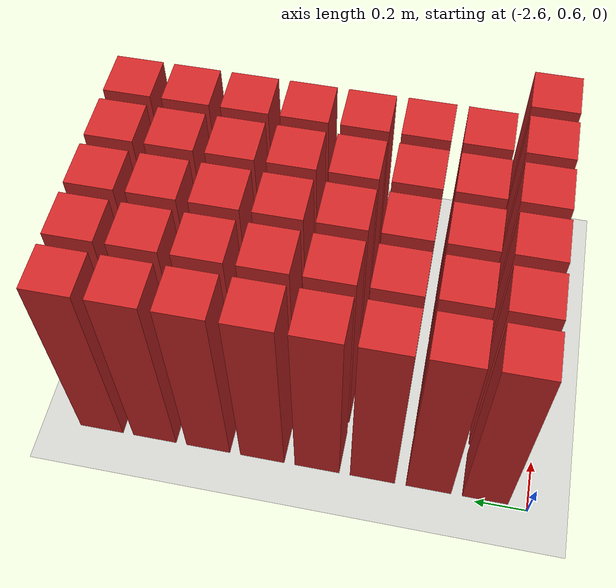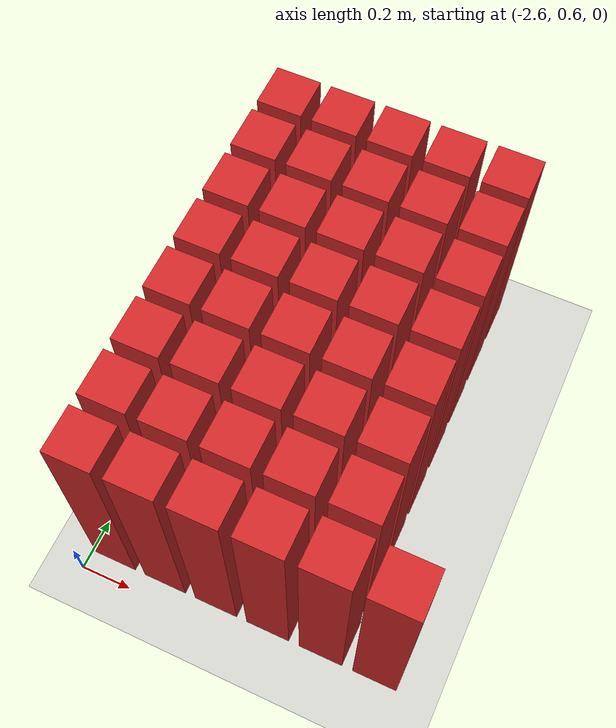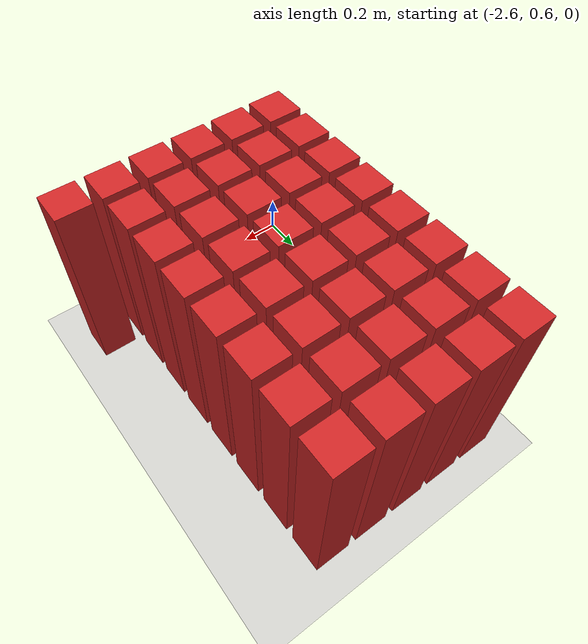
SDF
<sdf version="1.7">
 <world name="default">
  <model name="ground_plane">
   <static>1</static>
   <link name="link">
    <collision name="collision">
     <geometry><plane><normal>0 0 1</normal><size>100 100</size></plane></geometry>
     <surface>
      <contact><collide_bitmask>65535</collide_bitmask></contact>
      <friction><ode><mu>100</mu><mu2>50</mu2></ode></friction>
     </surface>
    </collision>
    <visual name="visual">
     <cast_shadows>0</cast_shadows>
     <geometry><plane><normal>0 0 1</normal><size>100 100</size></plane></geometry>
     <material>
      <script><uri>file://media/materials/scripts/gazebo.material</uri><name>Gazebo/CeilingTiled</name></script>
     </material>
    </visual>
   </link>
  </model>
  <model name="wall345">
   <link name="link">
    <pose>0 0 0.5 0 -0 0</pose>
    <inertial>
     <mass>0.5167</mass>
     <inertia>
      <ixx>0.000861167</ixx>
      <ixy>0</ixy>
      <ixz>0</ixz>
      <iyy>0.000861167</iyy>
      <iyz>0</iyz>
      <izz>0.000861167</izz>
     </inertia>
    </inertial>
    <collision name="collision">
     <geometry><box><size>0.21 0.21 1</size></box></geometry>
     <surface>
      <contact>
       <poissons_ratio>0.347</poissons_ratio>
       <elastic_modulus>8.8e+09</elastic_modulus>
       <ode><kp>100000</kp><kd>100</kd><max_vel>100</max_vel><min_depth>0.001</min_depth></ode>
      </contact>
      <friction>
       <torsional>
        <coefficient>1</coefficient>
        <use_patch_radius>0</use_patch_radius>
        <surface_radius>0.01</surface_radius>
       </torsional>
      </friction>
     </surface>
    </collision>
    <visual name="visual">
     <geometry><box><size>0.175 0.175 1</size></box></geometry>
     <material>
      <script><uri>file://media/materials/scripts/gazebo.material</uri><name>Gazebo/Red</name></script>
     </material>
    </visual>
   </link>
   <pose>-2.5 0.76087 0 0 -0 0</pose>
  </model>
  <model name="wall346">
   <link name="link">
    <pose>0 0 0.5 0 -0 0</pose>
    <inertial>
     <mass>0.5167</mass>
     <inertia>
      <ixx>0.000861167</ixx>
      <ixy>0</ixy>
      <ixz>0</ixz>
      <iyy>0.000861167</iyy>
      <iyz>0</iyz>
      <izz>0.000861167</izz>
     </inertia>
    </inertial>
    <collision name="collision">
     <geometry><box><size>0.21 0.21 1</size></box></geometry>
     <surface>
      <contact>
       <poissons_ratio>0.347</poissons_ratio>
       <elastic_modulus>8.8e+09</elastic_modulus>
       <ode><kp>100000</kp><kd>100</kd><max_vel>100</max_vel><min_depth>0.001</min_depth></ode>
      </contact>
      <friction>
       <torsional>
        <coefficient>1</coefficient>
        <use_patch_radius>0</use_patch_radius>
        <surface_radius>0.01</surface_radius>
       </torsional>
      </friction>
     </surface>
    </collision>
    <visual name="visual">
     <geometry><box><size>0.175 0.175 1</size></box></geometry>
     <material>
      <script><uri>file://media/materials/scripts/gazebo.material</uri><name>Gazebo/Red</name></script>
     </material>
    </visual>
   </link>
   <pose>-2.28261 0.76087 0 0 -0 0</pose>
  </model>
  <model name="wall347">
   <link name="link">
    <pose>0 0 0.5 0 -0 0</pose>
    <inertial>
     <mass>0.5167</mass>
     <inertia>
      <ixx>0.000861167</ixx>
      <ixy>0</ixy>
      <ixz>0</ixz>
      <iyy>0.000861167</iyy>
      <iyz>0</iyz>
      <izz>0.000861167</izz>
     </inertia>
    </inertial>
    <collision name="collision">
     <geometry><box><size>0.21 0.21 1</size></box></geometry>
     <surface>
      <contact>
       <poissons_ratio>0.347</poissons_ratio>
       <elastic_modulus>8.8e+09</elastic_modulus>
       <ode><kp>100000</kp><kd>100</kd><max_vel>100</max_vel><min_depth>0.001</min_depth></ode>
      </contact>
      <friction>
       <torsional>
        <coefficient>1</coefficient>
        <use_patch_radius>0</use_patch_radius>
        <surface_radius>0.01</surface_radius>
       </torsional>
      </friction>
     </surface>
    </collision>
    <visual name="visual">
     <geometry><box><size>0.175 0.175 1</size></box></geometry>
     <material>
      <script><uri>file://media/materials/scripts/gazebo.material</uri><name>Gazebo/Red</name></script>
     </material>
    </visual>
   </link>
   <pose>-2.06522 0.76087 0 0 -0 0</pose>
  </model>
  <model name="wall348">
   <link name="link">
    <pose>0 0 0.5 0 -0 0</pose>
    <inertial>
     <mass>0.5167</mass>
     <inertia>
      <ixx>0.000861167</ixx>
      <ixy>0</ixy>
      <ixz>0</ixz>
      <iyy>0.000861167</iyy>
      <iyz>0</iyz>
      <izz>0.000861167</izz>
     </inertia>
    </inertial>
    <collision name="collision">
     <geometry><box><size>0.21 0.21 1</size></box></geometry>
     <surface>
      <contact>
       <poissons_ratio>0.347</poissons_ratio>
       <elastic_modulus>8.8e+09</elastic_modulus>
       <ode><kp>100000</kp><kd>100</kd><max_vel>100</max_vel><min_depth>0.001</min_depth></ode>
      </contact>
      <friction>
       <torsional>
        <coefficient>1</coefficient>
        <use_patch_radius>0</use_patch_radius>
        <surface_radius>0.01</surface_radius>
       </torsional>
      </friction>
     </surface>
    </collision>
    <visual name="visual">
     <geometry><box><size>0.175 0.175 1</size></box></geometry>
     <material>
      <script><uri>file://media/materials/scripts/gazebo.material</uri><name>Gazebo/Red</name></script>
     </material>
    </visual>
   </link>
   <pose>-1.84783 0.76087 0 0 -0 0</pose>
  </model>
  <model name="wall349">
   <link name="link">
    <pose>0 0 0.5 0 -0 0</pose>
    <inertial>
     <mass>0.5167</mass>
     <inertia>
      <ixx>0.000861167</ixx>
      <ixy>0</ixy>
      <ixz>0</ixz>
      <iyy>0.000861167</iyy>
      <iyz>0</iyz>
      <izz>0.000861167</izz>
     </inertia>
    </inertial>
    <collision name="collision">
     <geometry><box><size>0.21 0.21 1</size></box></geometry>
     <surface>
      <contact>
       <poissons_ratio>0.347</poissons_ratio>
       <elastic_modulus>8.8e+09</elastic_modulus>
       <ode><kp>100000</kp><kd>100</kd><max_vel>100</max_vel><min_depth>0.001</min_depth></ode>
      </contact>
      <friction>
       <torsional>
        <coefficient>1</coefficient>
        <use_patch_radius>0</use_patch_radius>
        <surface_radius>0.01</surface_radius>
       </torsional>
      </friction>
     </surface>
    </collision>
    <visual name="visual">
     <geometry><box><size>0.175 0.175 1</size></box></geometry>
     <material>
      <script><uri>file://media/materials/scripts/gazebo.material</uri><name>Gazebo/Red</name></script>
     </material>
    </visual>
   </link>
   <pose>-1.63043 0.76087 0 0 -0 0</pose>
  </model>
  <model name="wall350">
   <link name="link">
    <pose>0 0 0.5 0 -0 0</pose>
    <inertial>
     <mass>0.5167</mass>
     <inertia>
      <ixx>0.000861167</ixx>
      <ixy>0</ixy>
      <ixz>0</ixz>
      <iyy>0.000861167</iyy>
      <iyz>0</iyz>
      <izz>0.000861167</izz>
     </inertia>
    </inertial>
    <collision name="collision">
     <geometry><box><size>0.21 0.21 1</size></box></geometry>
     <surface>
      <contact>
       <poissons_ratio>0.347</poissons_ratio>
       <elastic_modulus>8.8e+09</elastic_modulus>
       <ode><kp>100000</kp><kd>100</kd><max_vel>100</max_vel><min_depth>0.001</min_depth></ode>
      </contact>
      <friction>
       <torsional>
        <coefficient>1</coefficient>
        <use_patch_radius>0</use_patch_radius>
        <surface_radius>0.01</surface_radius>
       </torsional>
      </friction>
     </surface>
    </collision>
    <visual name="visual">
     <geometry><box><size>0.175 0.175 1</size></box></geometry>
     <material>
      <script><uri>file://media/materials/scripts/gazebo.material</uri><name>Gazebo/Red</name></script>
     </material>
    </visual>
   </link>
   <pose>-1.41304 0.76087 0 0 -0 0</pose>
  </model>
  <model name="wall368">
   <link name="link">
    <pose>0 0 0.5 0 -0 0</pose>
    <inertial>
     <mass>0.5167</mass>
     <inertia>
      <ixx>0.000861167</ixx>
      <ixy>0</ixy>
      <ixz>0</ixz>
      <iyy>0.000861167</iyy>
      <iyz>0</iyz>
      <izz>0.000861167</izz>
     </inertia>
    </inertial>
    <collision name="collision">
     <geometry><box><size>0.21 0.21 1</size></box></geometry>
     <surface>
      <contact>
       <poissons_ratio>0.347</poissons_ratio>
       <elastic_modulus>8.8e+09</elastic_modulus>
       <ode><kp>100000</kp><kd>100</kd><max_vel>100</max_vel><min_depth>0.001</min_depth></ode>
      </contact>
      <friction>
       <torsional>
        <coefficient>1</coefficient>
        <use_patch_radius>0</use_patch_radius>
        <surface_radius>0.01</surface_radius>
       </torsional>
      </friction>
     </surface>
    </collision>
    <visual name="visual">
     <geometry><box><size>0.175 0.175 1</size></box></geometry>
     <material>
      <script><uri>file://media/materials/scripts/gazebo.material</uri><name>Gazebo/Red</name></script>
     </material>
    </visual>
   </link>
   <pose>-2.5 0.978261 0 0 -0 0</pose>
  </model>
  <model name="wall369">
   <link name="link">
    <pose>0 0 0.5 0 -0 0</pose>
    <inertial>
     <mass>0.5167</mass>
     <inertia>
      <ixx>0.000861167</ixx>
      <ixy>0</ixy>
      <ixz>0</ixz>
      <iyy>0.000861167</iyy>
      <iyz>0</iyz>
      <izz>0.000861167</izz>
     </inertia>
    </inertial>
    <collision name="collision">
     <geometry><box><size>0.21 0.21 1</size></box></geometry>
     <surface>
      <contact>
       <poissons_ratio>0.347</poissons_ratio>
       <elastic_modulus>8.8e+09</elastic_modulus>
       <ode><kp>100000</kp><kd>100</kd><max_vel>100</max_vel><min_depth>0.001</min_depth></ode>
      </contact>
      <friction>
       <torsional>
        <coefficient>1</coefficient>
        <use_patch_radius>0</use_patch_radius>
        <surface_radius>0.01</surface_radius>
       </torsional>
      </friction>
     </surface>
    </collision>
    <visual name="visual">
     <geometry><box><size>0.175 0.175 1</size></box></geometry>
     <material>
      <script><uri>file://media/materials/scripts/gazebo.material</uri><name>Gazebo/Red</name></script>
     </material>
    </visual>
   </link>
   <pose>-2.28261 0.978261 0 0 -0 0</pose>
  </model>
  <model name="wall370">
   <link name="link">
    <pose>0 0 0.5 0 -0 0</pose>
    <inertial>
     <mass>0.5167</mass>
     <inertia>
      <ixx>0.000861167</ixx>
      <ixy>0</ixy>
      <ixz>0</ixz>
      <iyy>0.000861167</iyy>
      <iyz>0</iyz>
      <izz>0.000861167</izz>
     </inertia>
    </inertial>
    <collision name="collision">
     <geometry><box><size>0.21 0.21 1</size></box></geometry>
     <surface>
      <contact>
       <poissons_ratio>0.347</poissons_ratio>
       <elastic_modulus>8.8e+09</elastic_modulus>
       <ode><kp>100000</kp><kd>100</kd><max_vel>100</max_vel><min_depth>0.001</min_depth></ode>
      </contact>
      <friction>
       <torsional>
        <coefficient>1</coefficient>
        <use_patch_radius>0</use_patch_radius>
        <surface_radius>0.01</surface_radius>
       </torsional>
      </friction>
     </surface>
    </collision>
    <visual name="visual">
     <geometry><box><size>0.175 0.175 1</size></box></geometry>
     <material>
      <script><uri>file://media/materials/scripts/gazebo.material</uri><name>Gazebo/Red</name></script>
     </material>
    </visual>
   </link>
   <pose>-2.06522 0.978261 0 0 -0 0</pose>
  </model>
  <model name="wall371">
   <link name="link">
    <pose>0 0 0.5 0 -0 0</pose>
    <inertial>
     <mass>0.5167</mass>
     <inertia>
      <ixx>0.000861167</ixx>
      <ixy>0</ixy>
      <ixz>0</ixz>
      <iyy>0.000861167</iyy>
      <iyz>0</iyz>
      <izz>0.000861167</izz>
     </inertia>
    </inertial>
    <collision name="collision">
     <geometry><box><size>0.21 0.21 1</size></box></geometry>
     <surface>
      <contact>
       <poissons_ratio>0.347</poissons_ratio>
       <elastic_modulus>8.8e+09</elastic_modulus>
       <ode><kp>100000</kp><kd>100</kd><max_vel>100</max_vel><min_depth>0.001</min_depth></ode>
      </contact>
      <friction>
       <torsional>
        <coefficient>1</coefficient>
        <use_patch_radius>0</use_patch_radius>
        <surface_radius>0.01</surface_radius>
       </torsional>
      </friction>
     </surface>
    </collision>
    <visual name="visual">
     <geometry><box><size>0.175 0.175 1</size></box></geometry>
     <material>
      <script><uri>file://media/materials/scripts/gazebo.material</uri><name>Gazebo/Red</name></script>
     </material>
    </visual>
   </link>
   <pose>-1.84783 0.978261 0 0 -0 0</pose>
  </model>
  <model name="wall372">
   <link name="link">
    <pose>0 0 0.5 0 -0 0</pose>
    <inertial>
     <mass>0.5167</mass>
     <inertia>
      <ixx>0.000861167</ixx>
      <ixy>0</ixy>
      <ixz>0</ixz>
      <iyy>0.000861167</iyy>
      <iyz>0</iyz>
      <izz>0.000861167</izz>
     </inertia>
    </inertial>
    <collision name="collision">
     <geometry><box><size>0.21 0.21 1</size></box></geometry>
     <surface>
      <contact>
       <poissons_ratio>0.347</poissons_ratio>
       <elastic_modulus>8.8e+09</elastic_modulus>
       <ode><kp>100000</kp><kd>100</kd><max_vel>100</max_vel><min_depth>0.001</min_depth></ode>
      </contact>
      <friction>
       <torsional>
        <coefficient>1</coefficient>
        <use_patch_radius>0</use_patch_radius>
        <surface_radius>0.01</surface_radius>
       </torsional>
      </friction>
     </surface>
    </collision>
    <visual name="visual">
     <geometry><box><size>0.175 0.175 1</size></box></geometry>
     <material>
      <script><uri>file://media/materials/scripts/gazebo.material</uri><name>Gazebo/Red</name></script>
     </material>
    </visual>
   </link>
   <pose>-1.63043 0.978261 0 0 -0 0</pose>
  </model>
  <model name="wall391">
   <link name="link">
    <pose>0 0 0.5 0 -0 0</pose>
    <inertial>
     <mass>0.5167</mass>
     <inertia>
      <ixx>0.000861167</ixx>
      <ixy>0</ixy>
      <ixz>0</ixz>
      <iyy>0.000861167</iyy>
      <iyz>0</iyz>
      <izz>0.000861167</izz>
     </inertia>
    </inertial>
    <collision name="collision">
     <geometry><box><size>0.21 0.21 1</size></box></geometry>
     <surface>
      <contact>
       <poissons_ratio>0.347</poissons_ratio>
       <elastic_modulus>8.8e+09</elastic_modulus>
       <ode><kp>100000</kp><kd>100</kd><max_vel>100</max_vel><min_depth>0.001</min_depth></ode>
      </contact>
      <friction>
       <torsional>
        <coefficient>1</coefficient>
        <use_patch_radius>0</use_patch_radius>
        <surface_radius>0.01</surface_radius>
       </torsional>
      </friction>
     </surface>
    </collision>
    <visual name="visual">
     <geometry><box><size>0.175 0.175 1</size></box></geometry>
     <material>
      <script><uri>file://media/materials/scripts/gazebo.material</uri><name>Gazebo/Red</name></script>
     </material>
    </visual>
   </link>
   <pose>-2.5 1.19565 0 0 -0 0</pose>
  </model>
  <model name="wall392">
   <link name="link">
    <pose>0 0 0.5 0 -0 0</pose>
    <inertial>
     <mass>0.5167</mass>
     <inertia>
      <ixx>0.000861167</ixx>
      <ixy>0</ixy>
      <ixz>0</ixz>
      <iyy>0.000861167</iyy>
      <iyz>0</iyz>
      <izz>0.000861167</izz>
     </inertia>
    </inertial>
    <collision name="collision">
     <geometry><box><size>0.21 0.21 1</size></box></geometry>
     <surface>
      <contact>
       <poissons_ratio>0.347</poissons_ratio>
       <elastic_modulus>8.8e+09</elastic_modulus>
       <ode><kp>100000</kp><kd>100</kd><max_vel>100</max_vel><min_depth>0.001</min_depth></ode>
      </contact>
      <friction>
       <torsional>
        <coefficient>1</coefficient>
        <use_patch_radius>0</use_patch_radius>
        <surface_radius>0.01</surface_radius>
       </torsional>
      </friction>
     </surface>
    </collision>
    <visual name="visual">
     <geometry><box><size>0.175 0.175 1</size></box></geometry>
     <material>
      <script><uri>file://media/materials/scripts/gazebo.material</uri><name>Gazebo/Red</name></script>
     </material>
    </visual>
   </link>
   <pose>-2.28261 1.19565 0 0 -0 0</pose>
  </model>
  <model name="wall393">
   <link name="link">
    <pose>0 0 0.5 0 -0 0</pose>
    <inertial>
     <mass>0.5167</mass>
     <inertia>
      <ixx>0.000861167</ixx>
      <ixy>0</ixy>
      <ixz>0</ixz>
      <iyy>0.000861167</iyy>
      <iyz>0</iyz>
      <izz>0.000861167</izz>
     </inertia>
    </inertial>
    <collision name="collision">
     <geometry><box><size>0.21 0.21 1</size></box></geometry>
     <surface>
      <contact>
       <poissons_ratio>0.347</poissons_ratio>
       <elastic_modulus>8.8e+09</elastic_modulus>
       <ode><kp>100000</kp><kd>100</kd><max_vel>100</max_vel><min_depth>0.001</min_depth></ode>
      </contact>
      <friction>
       <torsional>
        <coefficient>1</coefficient>
        <use_patch_radius>0</use_patch_radius>
        <surface_radius>0.01</surface_radius>
       </torsional>
      </friction>
     </surface>
    </collision>
    <visual name="visual">
     <geometry><box><size>0.175 0.175 1</size></box></geometry>
     <material>
      <script><uri>file://media/materials/scripts/gazebo.material</uri><name>Gazebo/Red</name></script>
     </material>
    </visual>
   </link>
   <pose>-2.06522 1.19565 0 0 -0 0</pose>
  </model>
  <model name="wall394">
   <link name="link">
    <pose>0 0 0.5 0 -0 0</pose>
    <inertial>
     <mass>0.5167</mass>
     <inertia>
      <ixx>0.000861167</ixx>
      <ixy>0</ixy>
      <ixz>0</ixz>
      <iyy>0.000861167</iyy>
      <iyz>0</iyz>
      <izz>0.000861167</izz>
     </inertia>
    </inertial>
    <collision name="collision">
     <geometry><box><size>0.21 0.21 1</size></box></geometry>
     <surface>
      <contact>
       <poissons_ratio>0.347</poissons_ratio>
       <elastic_modulus>8.8e+09</elastic_modulus>
       <ode><kp>100000</kp><kd>100</kd><max_vel>100</max_vel><min_depth>0.001</min_depth></ode>
      </contact>
      <friction>
       <torsional>
        <coefficient>1</coefficient>
        <use_patch_radius>0</use_patch_radius>
        <surface_radius>0.01</surface_radius>
       </torsional>
      </friction>
     </surface>
    </collision>
    <visual name="visual">
     <geometry><box><size>0.175 0.175 1</size></box></geometry>
     <material>
      <script><uri>file://media/materials/scripts/gazebo.material</uri><name>Gazebo/Red</name></script>
     </material>
    </visual>
   </link>
   <pose>-1.84783 1.19565 0 0 -0 0</pose>
  </model>
  <model name="wall395">
   <link name="link">
    <pose>0 0 0.5 0 -0 0</pose>
    <inertial>
     <mass>0.5167</mass>
     <inertia>
      <ixx>0.000861167</ixx>
      <ixy>0</ixy>
      <ixz>0</ixz>
      <iyy>0.000861167</iyy>
      <iyz>0</iyz>
      <izz>0.000861167</izz>
     </inertia>
    </inertial>
    <collision name="collision">
     <geometry><box><size>0.21 0.21 1</size></box></geometry>
     <surface>
      <contact>
       <poissons_ratio>0.347</poissons_ratio>
       <elastic_modulus>8.8e+09</elastic_modulus>
       <ode><kp>100000</kp><kd>100</kd><max_vel>100</max_vel><min_depth>0.001</min_depth></ode>
      </contact>
      <friction>
       <torsional>
        <coefficient>1</coefficient>
        <use_patch_radius>0</use_patch_radius>
        <surface_radius>0.01</surface_radius>
       </torsional>
      </friction>
     </surface>
    </collision>
    <visual name="visual">
     <geometry><box><size>0.175 0.175 1</size></box></geometry>
     <material>
      <script><uri>file://media/materials/scripts/gazebo.material</uri><name>Gazebo/Red</name></script>
     </material>
    </visual>
   </link>
   <pose>-1.63043 1.19565 0 0 -0 0</pose>
  </model>
  <model name="wall414">
   <link name="link">
    <pose>0 0 0.5 0 -0 0</pose>
    <inertial>
     <mass>0.5167</mass>
     <inertia>
      <ixx>0.000861167</ixx>
      <ixy>0</ixy>
      <ixz>0</ixz>
      <iyy>0.000861167</iyy>
      <iyz>0</iyz>
      <izz>0.000861167</izz>
     </inertia>
    </inertial>
    <collision name="collision">
     <geometry><box><size>0.21 0.21 1</size></box></geometry>
     <surface>
      <contact>
       <poissons_ratio>0.347</poissons_ratio>
       <elastic_modulus>8.8e+09</elastic_modulus>
       <ode><kp>100000</kp><kd>100</kd><max_vel>100</max_vel><min_depth>0.001</min_depth></ode>
      </contact>
      <friction>
       <torsional>
        <coefficient>1</coefficient>
        <use_patch_radius>0</use_patch_radius>
        <surface_radius>0.01</surface_radius>
       </torsional>
      </friction>
     </surface>
    </collision>
    <visual name="visual">
     <geometry><box><size>0.175 0.175 1</size></box></geometry>
     <material>
      <script><uri>file://media/materials/scripts/gazebo.material</uri><name>Gazebo/Red</name></script>
     </material>
    </visual>
   </link>
   <pose>-2.5 1.41304 0 0 -0 0</pose>
  </model>
  <model name="wall415">
   <link name="link">
    <pose>0 0 0.5 0 -0 0</pose>
    <inertial>
     <mass>0.5167</mass>
     <inertia>
      <ixx>0.000861167</ixx>
      <ixy>0</ixy>
      <ixz>0</ixz>
      <iyy>0.000861167</iyy>
      <iyz>0</iyz>
      <izz>0.000861167</izz>
     </inertia>
    </inertial>
    <collision name="collision">
     <geometry><box><size>0.21 0.21 1</size></box></geometry>
     <surface>
      <contact>
       <poissons_ratio>0.347</poissons_ratio>
       <elastic_modulus>8.8e+09</elastic_modulus>
       <ode><kp>100000</kp><kd>100</kd><max_vel>100</max_vel><min_depth>0.001</min_depth></ode>
      </contact>
      <friction>
       <torsional>
        <coefficient>1</coefficient>
        <use_patch_radius>0</use_patch_radius>
        <surface_radius>0.01</surface_radius>
       </torsional>
      </friction>
     </surface>
    </collision>
    <visual name="visual">
     <geometry><box><size>0.175 0.175 1</size></box></geometry>
     <material>
      <script><uri>file://media/materials/scripts/gazebo.material</uri><name>Gazebo/Red</name></script>
     </material>
    </visual>
   </link>
   <pose>-2.28261 1.41304 0 0 -0 0</pose>
  </model>
  <model name="wall416">
   <link name="link">
    <pose>0 0 0.5 0 -0 0</pose>
    <inertial>
     <mass>0.5167</mass>
     <inertia>
      <ixx>0.000861167</ixx>
      <ixy>0</ixy>
      <ixz>0</ixz>
      <iyy>0.000861167</iyy>
      <iyz>0</iyz>
      <izz>0.000861167</izz>
     </inertia>
    </inertial>
    <collision name="collision">
     <geometry><box><size>0.21 0.21 1</size></box></geometry>
     <surface>
      <contact>
       <poissons_ratio>0.347</poissons_ratio>
       <elastic_modulus>8.8e+09</elastic_modulus>
       <ode><kp>100000</kp><kd>100</kd><max_vel>100</max_vel><min_depth>0.001</min_depth></ode>
      </contact>
      <friction>
       <torsional>
        <coefficient>1</coefficient>
        <use_patch_radius>0</use_patch_radius>
        <surface_radius>0.01</surface_radius>
       </torsional>
      </friction>
     </surface>
    </collision>
    <visual name="visual">
     <geometry><box><size>0.175 0.175 1</size></box></geometry>
     <material>
      <script><uri>file://media/materials/scripts/gazebo.material</uri><name>Gazebo/Red</name></script>
     </material>
    </visual>
   </link>
   <pose>-2.06522 1.41304 0 0 -0 0</pose>
  </model>
  <model name="wall417">
   <link name="link">
    <pose>0 0 0.5 0 -0 0</pose>
    <inertial>
     <mass>0.5167</mass>
     <inertia>
      <ixx>0.000861167</ixx>
      <ixy>0</ixy>
      <ixz>0</ixz>
      <iyy>0.000861167</iyy>
      <iyz>0</iyz>
      <izz>0.000861167</izz>
     </inertia>
    </inertial>
    <collision name="collision">
     <geometry><box><size>0.21 0.21 1</size></box></geometry>
     <surface>
      <contact>
       <poissons_ratio>0.347</poissons_ratio>
       <elastic_modulus>8.8e+09</elastic_modulus>
       <ode><kp>100000</kp><kd>100</kd><max_vel>100</max_vel><min_depth>0.001</min_depth></ode>
      </contact>
      <friction>
       <torsional>
        <coefficient>1</coefficient>
        <use_patch_radius>0</use_patch_radius>
        <surface_radius>0.01</surface_radius>
       </torsional>
      </friction>
     </surface>
    </collision>
    <visual name="visual">
     <geometry><box><size>0.175 0.175 1</size></box></geometry>
     <material>
      <script><uri>file://media/materials/scripts/gazebo.material</uri><name>Gazebo/Red</name></script>
     </material>
    </visual>
   </link>
   <pose>-1.84783 1.41304 0 0 -0 0</pose>
  </model>
  <model name="wall418">
   <link name="link">
    <pose>0 0 0.5 0 -0 0</pose>
    <inertial>
     <mass>0.5167</mass>
     <inertia>
      <ixx>0.000861167</ixx>
      <ixy>0</ixy>
      <ixz>0</ixz>
      <iyy>0.000861167</iyy>
      <iyz>0</iyz>
      <izz>0.000861167</izz>
     </inertia>
    </inertial>
    <collision name="collision">
     <geometry><box><size>0.21 0.21 1</size></box></geometry>
     <surface>
      <contact>
       <poissons_ratio>0.347</poissons_ratio>
       <elastic_modulus>8.8e+09</elastic_modulus>
       <ode><kp>100000</kp><kd>100</kd><max_vel>100</max_vel><min_depth>0.001</min_depth></ode>
      </contact>
      <friction>
       <torsional>
        <coefficient>1</coefficient>
        <use_patch_radius>0</use_patch_radius>
        <surface_radius>0.01</surface_radius>
       </torsional>
      </friction>
     </surface>
    </collision>
    <visual name="visual">
     <geometry><box><size>0.175 0.175 1</size></box></geometry>
     <material>
      <script><uri>file://media/materials/scripts/gazebo.material</uri><name>Gazebo/Red</name></script>
     </material>
    </visual>
   </link>
   <pose>-1.63043 1.41304 0 0 -0 0</pose>
  </model>
  <model name="wall437">
   <link name="link">
    <pose>0 0 0.5 0 -0 0</pose>
    <inertial>
     <mass>0.5167</mass>
     <inertia>
      <ixx>0.000861167</ixx>
      <ixy>0</ixy>
      <ixz>0</ixz>
      <iyy>0.000861167</iyy>
      <iyz>0</iyz>
      <izz>0.000861167</izz>
     </inertia>
    </inertial>
    <collision name="collision">
     <geometry><box><size>0.21 0.21 1</size></box></geometry>
     <surface>
      <contact>
       <poissons_ratio>0.347</poissons_ratio>
       <elastic_modulus>8.8e+09</elastic_modulus>
       <ode><kp>100000</kp><kd>100</kd><max_vel>100</max_vel><min_depth>0.001</min_depth></ode>
      </contact>
      <friction>
       <torsional>
        <coefficient>1</coefficient>
        <use_patch_radius>0</use_patch_radius>
        <surface_radius>0.01</surface_radius>
       </torsional>
      </friction>
     </surface>
    </collision>
    <visual name="visual">
     <geometry><box><size>0.175 0.175 1</size></box></geometry>
     <material>
      <script><uri>file://media/materials/scripts/gazebo.material</uri><name>Gazebo/Red</name></script>
     </material>
    </visual>
   </link>
   <pose>-2.5 1.63043 0 0 -0 0</pose>
  </model>
  <model name="wall438">
   <link name="link">
    <pose>0 0 0.5 0 -0 0</pose>
    <inertial>
     <mass>0.5167</mass>
     <inertia>
      <ixx>0.000861167</ixx>
      <ixy>0</ixy>
      <ixz>0</ixz>
      <iyy>0.000861167</iyy>
      <iyz>0</iyz>
      <izz>0.000861167</izz>
     </inertia>
    </inertial>
    <collision name="collision">
     <geometry><box><size>0.21 0.21 1</size></box></geometry>
     <surface>
      <contact>
       <poissons_ratio>0.347</poissons_ratio>
       <elastic_modulus>8.8e+09</elastic_modulus>
       <ode><kp>100000</kp><kd>100</kd><max_vel>100</max_vel><min_depth>0.001</min_depth></ode>
      </contact>
      <friction>
       <torsional>
        <coefficient>1</coefficient>
        <use_patch_radius>0</use_patch_radius>
        <surface_radius>0.01</surface_radius>
       </torsional>
      </friction>
     </surface>
    </collision>
    <visual name="visual">
     <geometry><box><size>0.175 0.175 1</size></box></geometry>
     <material>
      <script><uri>file://media/materials/scripts/gazebo.material</uri><name>Gazebo/Red</name></script>
     </material>
    </visual>
   </link>
   <pose>-2.28261 1.63043 0 0 -0 0</pose>
  </model>
  <model name="wall439">
   <link name="link">
    <pose>0 0 0.5 0 -0 0</pose>
    <inertial>
     <mass>0.5167</mass>
     <inertia>
      <ixx>0.000861167</ixx>
      <ixy>0</ixy>
      <ixz>0</ixz>
      <iyy>0.000861167</iyy>
      <iyz>0</iyz>
      <izz>0.000861167</izz>
     </inertia>
    </inertial>
    <collision name="collision">
     <geometry><box><size>0.21 0.21 1</size></box></geometry>
     <surface>
      <contact>
       <poissons_ratio>0.347</poissons_ratio>
       <elastic_modulus>8.8e+09</elastic_modulus>
       <ode><kp>100000</kp><kd>100</kd><max_vel>100</max_vel><min_depth>0.001</min_depth></ode>
      </contact>
      <friction>
       <torsional>
        <coefficient>1</coefficient>
        <use_patch_radius>0</use_patch_radius>
        <surface_radius>0.01</surface_radius>
       </torsional>
      </friction>
     </surface>
    </collision>
    <visual name="visual">
     <geometry><box><size>0.175 0.175 1</size></box></geometry>
     <material>
      <script><uri>file://media/materials/scripts/gazebo.material</uri><name>Gazebo/Red</name></script>
     </material>
    </visual>
   </link>
   <pose>-2.06522 1.63043 0 0 -0 0</pose>
  </model>
  <model name="wall440">
   <link name="link">
    <pose>0 0 0.5 0 -0 0</pose>
    <inertial>
     <mass>0.5167</mass>
     <inertia>
      <ixx>0.000861167</ixx>
      <ixy>0</ixy>
      <ixz>0</ixz>
      <iyy>0.000861167</iyy>
      <iyz>0</iyz>
      <izz>0.000861167</izz>
     </inertia>
    </inertial>
    <collision name="collision">
     <geometry><box><size>0.21 0.21 1</size></box></geometry>
     <surface>
      <contact>
       <poissons_ratio>0.347</poissons_ratio>
       <elastic_modulus>8.8e+09</elastic_modulus>
       <ode><kp>100000</kp><kd>100</kd><max_vel>100</max_vel><min_depth>0.001</min_depth></ode>
      </contact>
      <friction>
       <torsional>
        <coefficient>1</coefficient>
        <use_patch_radius>0</use_patch_radius>
        <surface_radius>0.01</surface_radius>
       </torsional>
      </friction>
     </surface>
    </collision>
    <visual name="visual">
     <geometry><box><size>0.175 0.175 1</size></box></geometry>
     <material>
      <script><uri>file://media/materials/scripts/gazebo.material</uri><name>Gazebo/Red</name></script>
     </material>
    </visual>
   </link>
   <pose>-1.84783 1.63043 0 0 -0 0</pose>
  </model>
  <model name="wall441">
   <link name="link">
    <pose>0 0 0.5 0 -0 0</pose>
    <inertial>
     <mass>0.5167</mass>
     <inertia>
      <ixx>0.000861167</ixx>
      <ixy>0</ixy>
      <ixz>0</ixz>
      <iyy>0.000861167</iyy>
      <iyz>0</iyz>
      <izz>0.000861167</izz>
     </inertia>
    </inertial>
    <collision name="collision">
     <geometry><box><size>0.21 0.21 1</size></box></geometry>
     <surface>
      <contact>
       <poissons_ratio>0.347</poissons_ratio>
       <elastic_modulus>8.8e+09</elastic_modulus>
       <ode><kp>100000</kp><kd>100</kd><max_vel>100</max_vel><min_depth>0.001</min_depth></ode>
      </contact>
      <friction>
       <torsional>
        <coefficient>1</coefficient>
        <use_patch_radius>0</use_patch_radius>
        <surface_radius>0.01</surface_radius>
       </torsional>
      </friction>
     </surface>
    </collision>
    <visual name="visual">
     <geometry><box><size>0.175 0.175 1</size></box></geometry>
     <material>
      <script><uri>file://media/materials/scripts/gazebo.material</uri><name>Gazebo/Red</name></script>
     </material>
    </visual>
   </link>
   <pose>-1.63043 1.63043 0 0 -0 0</pose>
  </model>
  <model name="wall460">
   <link name="link">
    <pose>0 0 0.5 0 -0 0</pose>
    <inertial>
     <mass>0.5167</mass>
     <inertia>
      <ixx>0.000861167</ixx>
      <ixy>0</ixy>
      <ixz>0</ixz>
      <iyy>0.000861167</iyy>
      <iyz>0</iyz>
      <izz>0.000861167</izz>
     </inertia>
    </inertial>
    <collision name="collision">
     <geometry><box><size>0.21 0.21 1</size></box></geometry>
     <surface>
      <contact>
       <poissons_ratio>0.347</poissons_ratio>
       <elastic_modulus>8.8e+09</elastic_modulus>
       <ode><kp>100000</kp><kd>100</kd><max_vel>100</max_vel><min_depth>0.001</min_depth></ode>
      </contact>
      <friction>
       <torsional>
        <coefficient>1</coefficient>
        <use_patch_radius>0</use_patch_radius>
        <surface_radius>0.01</surface_radius>
       </torsional>
      </friction>
     </surface>
    </collision>
    <visual name="visual">
     <geometry><box><size>0.175 0.175 1</size></box></geometry>
     <material>
      <script><uri>file://media/materials/scripts/gazebo.material</uri><name>Gazebo/Red</name></script>
     </material>
    </visual>
   </link>
   <pose>-2.5 1.84783 0 0 -0 0</pose>
  </model>
  <model name="wall461">
   <link name="link">
    <pose>0 0 0.5 0 -0 0</pose>
    <inertial>
     <mass>0.5167</mass>
     <inertia>
      <ixx>0.000861167</ixx>
      <ixy>0</ixy>
      <ixz>0</ixz>
      <iyy>0.000861167</iyy>
      <iyz>0</iyz>
      <izz>0.000861167</izz>
     </inertia>
    </inertial>
    <collision name="collision">
     <geometry><box><size>0.21 0.21 1</size></box></geometry>
     <surface>
      <contact>
       <poissons_ratio>0.347</poissons_ratio>
       <elastic_modulus>8.8e+09</elastic_modulus>
       <ode><kp>100000</kp><kd>100</kd><max_vel>100</max_vel><min_depth>0.001</min_depth></ode>
      </contact>
      <friction>
       <torsional>
        <coefficient>1</coefficient>
        <use_patch_radius>0</use_patch_radius>
        <surface_radius>0.01</surface_radius>
       </torsional>
      </friction>
     </surface>
    </collision>
    <visual name="visual">
     <geometry><box><size>0.175 0.175 1</size></box></geometry>
     <material>
      <script><uri>file://media/materials/scripts/gazebo.material</uri><name>Gazebo/Red</name></script>
     </material>
    </visual>
   </link>
   <pose>-2.28261 1.84783 0 0 -0 0</pose>
  </model>
  <model name="wall462">
   <link name="link">
    <pose>0 0 0.5 0 -0 0</pose>
    <inertial>
     <mass>0.5167</mass>
     <inertia>
      <ixx>0.000861167</ixx>
      <ixy>0</ixy>
      <ixz>0</ixz>
      <iyy>0.000861167</iyy>
      <iyz>0</iyz>
      <izz>0.000861167</izz>
     </inertia>
    </inertial>
    <collision name="collision">
     <geometry><box><size>0.21 0.21 1</size></box></geometry>
     <surface>
      <contact>
       <poissons_ratio>0.347</poissons_ratio>
       <elastic_modulus>8.8e+09</elastic_modulus>
       <ode><kp>100000</kp><kd>100</kd><max_vel>100</max_vel><min_depth>0.001</min_depth></ode>
      </contact>
      <friction>
       <torsional>
        <coefficient>1</coefficient>
        <use_patch_radius>0</use_patch_radius>
        <surface_radius>0.01</surface_radius>
       </torsional>
      </friction>
     </surface>
    </collision>
    <visual name="visual">
     <geometry><box><size>0.175 0.175 1</size></box></geometry>
     <material>
      <script><uri>file://media/materials/scripts/gazebo.material</uri><name>Gazebo/Red</name></script>
     </material>
    </visual>
   </link>
   <pose>-2.06522 1.84783 0 0 -0 0</pose>
  </model>
  <model name="wall463">
   <link name="link">
    <pose>0 0 0.5 0 -0 0</pose>
    <inertial>
     <mass>0.5167</mass>
     <inertia>
      <ixx>0.000861167</ixx>
      <ixy>0</ixy>
      <ixz>0</ixz>
      <iyy>0.000861167</iyy>
      <iyz>0</iyz>
      <izz>0.000861167</izz>
     </inertia>
    </inertial>
    <collision name="collision">
     <geometry><box><size>0.21 0.21 1</size></box></geometry>
     <surface>
      <contact>
       <poissons_ratio>0.347</poissons_ratio>
       <elastic_modulus>8.8e+09</elastic_modulus>
       <ode><kp>100000</kp><kd>100</kd><max_vel>100</max_vel><min_depth>0.001</min_depth></ode>
      </contact>
      <friction>
       <torsional>
        <coefficient>1</coefficient>
        <use_patch_radius>0</use_patch_radius>
        <surface_radius>0.01</surface_radius>
       </torsional>
      </friction>
     </surface>
    </collision>
    <visual name="visual">
     <geometry><box><size>0.175 0.175 1</size></box></geometry>
     <material>
      <script><uri>file://media/materials/scripts/gazebo.material</uri><name>Gazebo/Red</name></script>
     </material>
    </visual>
   </link>
   <pose>-1.84783 1.84783 0 0 -0 0</pose>
  </model>
  <model name="wall464">
   <link name="link">
    <pose>0 0 0.5 0 -0 0</pose>
    <inertial>
     <mass>0.5167</mass>
     <inertia>
      <ixx>0.000861167</ixx>
      <ixy>0</ixy>
      <ixz>0</ixz>
      <iyy>0.000861167</iyy>
      <iyz>0</iyz>
      <izz>0.000861167</izz>
     </inertia>
    </inertial>
    <collision name="collision">
     <geometry><box><size>0.21 0.21 1</size></box></geometry>
     <surface>
      <contact>
       <poissons_ratio>0.347</poissons_ratio>
       <elastic_modulus>8.8e+09</elastic_modulus>
       <ode><kp>100000</kp><kd>100</kd><max_vel>100</max_vel><min_depth>0.001</min_depth></ode>
      </contact>
      <friction>
       <torsional>
        <coefficient>1</coefficient>
        <use_patch_radius>0</use_patch_radius>
        <surface_radius>0.01</surface_radius>
       </torsional>
      </friction>
     </surface>
    </collision>
    <visual name="visual">
     <geometry><box><size>0.175 0.175 1</size></box></geometry>
     <material>
      <script><uri>file://media/materials/scripts/gazebo.material</uri><name>Gazebo/Red</name></script>
     </material>
    </visual>
   </link>
   <pose>-1.63043 1.84783 0 0 -0 0</pose>
  </model>
  <model name="wall483">
   <link name="link">
    <pose>0 0 0.5 0 -0 0</pose>
    <inertial>
     <mass>0.5167</mass>
     <inertia>
      <ixx>0.000861167</ixx>
      <ixy>0</ixy>
      <ixz>0</ixz>
      <iyy>0.000861167</iyy>
      <iyz>0</iyz>
      <izz>0.000861167</izz>
     </inertia>
    </inertial>
    <collision name="collision">
     <geometry><box><size>0.21 0.21 1</size></box></geometry>
     <surface>
      <contact>
       <poissons_ratio>0.347</poissons_ratio>
       <elastic_modulus>8.8e+09</elastic_modulus>
       <ode><kp>100000</kp><kd>100</kd><max_vel>100</max_vel><min_depth>0.001</min_depth></ode>
      </contact>
      <friction>
       <torsional>
        <coefficient>1</coefficient>
        <use_patch_radius>0</use_patch_radius>
        <surface_radius>0.01</surface_radius>
       </torsional>
      </friction>
     </surface>
    </collision>
    <visual name="visual">
     <geometry><box><size>0.175 0.175 1</size></box></geometry>
     <material>
      <script><uri>file://media/materials/scripts/gazebo.material</uri><name>Gazebo/Red</name></script>
     </material>
    </visual>
   </link>
   <pose>-2.5 2.06522 0 0 -0 0</pose>
  </model>
  <model name="wall484">
   <link name="link">
    <pose>0 0 0.5 0 -0 0</pose>
    <inertial>
     <mass>0.5167</mass>
     <inertia>
      <ixx>0.000861167</ixx>
      <ixy>0</ixy>
      <ixz>0</ixz>
      <iyy>0.000861167</iyy>
      <iyz>0</iyz>
      <izz>0.000861167</izz>
     </inertia>
    </inertial>
    <collision name="collision">
     <geometry><box><size>0.21 0.21 1</size></box></geometry>
     <surface>
      <contact>
       <poissons_ratio>0.347</poissons_ratio>
       <elastic_modulus>8.8e+09</elastic_modulus>
       <ode><kp>100000</kp><kd>100</kd><max_vel>100</max_vel><min_depth>0.001</min_depth></ode>
      </contact>
      <friction>
       <torsional>
        <coefficient>1</coefficient>
        <use_patch_radius>0</use_patch_radius>
        <surface_radius>0.01</surface_radius>
       </torsional>
      </friction>
     </surface>
    </collision>
    <visual name="visual">
     <geometry><box><size>0.175 0.175 1</size></box></geometry>
     <material>
      <script><uri>file://media/materials/scripts/gazebo.material</uri><name>Gazebo/Red</name></script>
     </material>
    </visual>
   </link>
   <pose>-2.28261 2.06522 0 0 -0 0</pose>
  </model>
  <model name="wall485">
   <link name="link">
    <pose>0 0 0.5 0 -0 0</pose>
    <inertial>
     <mass>0.5167</mass>
     <inertia>
      <ixx>0.000861167</ixx>
      <ixy>0</ixy>
      <ixz>0</ixz>
      <iyy>0.000861167</iyy>
      <iyz>0</iyz>
      <izz>0.000861167</izz>
     </inertia>
    </inertial>
    <collision name="collision">
     <geometry><box><size>0.21 0.21 1</size></box></geometry>
     <surface>
      <contact>
       <poissons_ratio>0.347</poissons_ratio>
       <elastic_modulus>8.8e+09</elastic_modulus>
       <ode><kp>100000</kp><kd>100</kd><max_vel>100</max_vel><min_depth>0.001</min_depth></ode>
      </contact>
      <friction>
       <torsional>
        <coefficient>1</coefficient>
        <use_patch_radius>0</use_patch_radius>
        <surface_radius>0.01</surface_radius>
       </torsional>
      </friction>
     </surface>
    </collision>
    <visual name="visual">
     <geometry><box><size>0.175 0.175 1</size></box></geometry>
     <material>
      <script><uri>file://media/materials/scripts/gazebo.material</uri><name>Gazebo/Red</name></script>
     </material>
    </visual>
   </link>
   <pose>-2.06522 2.06522 0 0 -0 0</pose>
  </model>
  <model name="wall486">
   <link name="link">
    <pose>0 0 0.5 0 -0 0</pose>
    <inertial>
     <mass>0.5167</mass>
     <inertia>
      <ixx>0.000861167</ixx>
      <ixy>0</ixy>
      <ixz>0</ixz>
      <iyy>0.000861167</iyy>
      <iyz>0</iyz>
      <izz>0.000861167</izz>
     </inertia>
    </inertial>
    <collision name="collision">
     <geometry><box><size>0.21 0.21 1</size></box></geometry>
     <surface>
      <contact>
       <poissons_ratio>0.347</poissons_ratio>
       <elastic_modulus>8.8e+09</elastic_modulus>
       <ode><kp>100000</kp><kd>100</kd><max_vel>100</max_vel><min_depth>0.001</min_depth></ode>
      </contact>
      <friction>
       <torsional>
        <coefficient>1</coefficient>
        <use_patch_radius>0</use_patch_radius>
        <surface_radius>0.01</surface_radius>
       </torsional>
      </friction>
     </surface>
    </collision>
    <visual name="visual">
     <geometry><box><size>0.175 0.175 1</size></box></geometry>
     <material>
      <script><uri>file://media/materials/scripts/gazebo.material</uri><name>Gazebo/Red</name></script>
     </material>
    </visual>
   </link>
   <pose>-1.84783 2.06522 0 0 -0 0</pose>
  </model>
  <model name="wall487">
   <link name="link">
    <pose>0 0 0.5 0 -0 0</pose>
    <inertial>
     <mass>0.5167</mass>
     <inertia>
      <ixx>0.000861167</ixx>
      <ixy>0</ixy>
      <ixz>0</ixz>
      <iyy>0.000861167</iyy>
      <iyz>0</iyz>
      <izz>0.000861167</izz>
     </inertia>
    </inertial>
    <collision name="collision">
     <geometry><box><size>0.21 0.21 1</size></box></geometry>
     <surface>
      <contact>
       <poissons_ratio>0.347</poissons_ratio>
       <elastic_modulus>8.8e+09</elastic_modulus>
       <ode><kp>100000</kp><kd>100</kd><max_vel>100</max_vel><min_depth>0.001</min_depth></ode>
      </contact>
      <friction>
       <torsional>
        <coefficient>1</coefficient>
        <use_patch_radius>0</use_patch_radius>
        <surface_radius>0.01</surface_radius>
       </torsional>
      </friction>
     </surface>
    </collision>
    <visual name="visual">
     <geometry><box><size>0.175 0.175 1</size></box></geometry>
     <material>
      <script><uri>file://media/materials/scripts/gazebo.material</uri><name>Gazebo/Red</name></script>
     </material>
    </visual>
   </link>
   <pose>-1.63043 2.06522 0 0 -0 0</pose>
  </model>
  <model name="wall506">
   <link name="link">
    <pose>0 0 0.5 0 -0 0</pose>
    <inertial>
     <mass>0.5167</mass>
     <inertia>
      <ixx>0.000861167</ixx>
      <ixy>0</ixy>
      <ixz>0</ixz>
      <iyy>0.000861167</iyy>
      <iyz>0</iyz>
      <izz>0.000861167</izz>
     </inertia>
    </inertial>
    <collision name="collision">
     <geometry><box><size>0.21 0.21 1</size></box></geometry>
     <surface>
      <contact>
       <poissons_ratio>0.347</poissons_ratio>
       <elastic_modulus>8.8e+09</elastic_modulus>
       <ode><kp>100000</kp><kd>100</kd><max_vel>100</max_vel><min_depth>0.001</min_depth></ode>
      </contact>
      <friction>
       <torsional>
        <coefficient>1</coefficient>
        <use_patch_radius>0</use_patch_radius>
        <surface_radius>0.01</surface_radius>
       </torsional>
      </friction>
     </surface>
    </collision>
    <visual name="visual">
     <geometry><box><size>0.175 0.175 1</size></box></geometry>
     <material>
      <script><uri>file://media/materials/scripts/gazebo.material</uri><name>Gazebo/Red</name></script>
     </material>
    </visual>
   </link>
   <pose>-2.5 2.28261 0 0 -0 0</pose>
  </model>
  <model name="wall507">
   <link name="link">
    <pose>0 0 0.5 0 -0 0</pose>
    <inertial>
     <mass>0.5167</mass>
     <inertia>
      <ixx>0.000861167</ixx>
      <ixy>0</ixy>
      <ixz>0</ixz>
      <iyy>0.000861167</iyy>
      <iyz>0</iyz>
      <izz>0.000861167</izz>
     </inertia>
    </inertial>
    <collision name="collision">
     <geometry><box><size>0.21 0.21 1</size></box></geometry>
     <surface>
      <contact>
       <poissons_ratio>0.347</poissons_ratio>
       <elastic_modulus>8.8e+09</elastic_modulus>
       <ode><kp>100000</kp><kd>100</kd><max_vel>100</max_vel><min_depth>0.001</min_depth></ode>
      </contact>
      <friction>
       <torsional>
        <coefficient>1</coefficient>
        <use_patch_radius>0</use_patch_radius>
        <surface_radius>0.01</surface_radius>
       </torsional>
      </friction>
     </surface>
    </collision>
    <visual name="visual">
     <geometry><box><size>0.175 0.175 1</size></box></geometry>
     <material>
      <script><uri>file://media/materials/scripts/gazebo.material</uri><name>Gazebo/Red</name></script>
     </material>
    </visual>
   </link>
   <pose>-2.28261 2.28261 0 0 -0 0</pose>
  </model>
  <model name="wall508">
   <link name="link">
    <pose>0 0 0.5 0 -0 0</pose>
    <inertial>
     <mass>0.5167</mass>
     <inertia>
      <ixx>0.000861167</ixx>
      <ixy>0</ixy>
      <ixz>0</ixz>
      <iyy>0.000861167</iyy>
      <iyz>0</iyz>
      <izz>0.000861167</izz>
     </inertia>
    </inertial>
    <collision name="collision">
     <geometry><box><size>0.21 0.21 1</size></box></geometry>
     <surface>
      <contact>
       <poissons_ratio>0.347</poissons_ratio>
       <elastic_modulus>8.8e+09</elastic_modulus>
       <ode><kp>100000</kp><kd>100</kd><max_vel>100</max_vel><min_depth>0.001</min_depth></ode>
      </contact>
      <friction>
       <torsional>
        <coefficient>1</coefficient>
        <use_patch_radius>0</use_patch_radius>
        <surface_radius>0.01</surface_radius>
       </torsional>
      </friction>
     </surface>
    </collision>
    <visual name="visual">
     <geometry><box><size>0.175 0.175 1</size></box></geometry>
     <material>
      <script><uri>file://media/materials/scripts/gazebo.material</uri><name>Gazebo/Red</name></script>
     </material>
    </visual>
   </link>
   <pose>-2.06522 2.28261 0 0 -0 0</pose>
  </model>
  <model name="wall509">
   <link name="link">
    <pose>0 0 0.5 0 -0 0</pose>
    <inertial>
     <mass>0.5167</mass>
     <inertia>
      <ixx>0.000861167</ixx>
      <ixy>0</ixy>
      <ixz>0</ixz>
      <iyy>0.000861167</iyy>
      <iyz>0</iyz>
      <izz>0.000861167</izz>
     </inertia>
    </inertial>
    <collision name="collision">
     <geometry><box><size>0.21 0.21 1</size></box></geometry>
     <surface>
      <contact>
       <poissons_ratio>0.347</poissons_ratio>
       <elastic_modulus>8.8e+09</elastic_modulus>
       <ode><kp>100000</kp><kd>100</kd><max_vel>100</max_vel><min_depth>0.001</min_depth></ode>
      </contact>
      <friction>
       <torsional>
        <coefficient>1</coefficient>
        <use_patch_radius>0</use_patch_radius>
        <surface_radius>0.01</surface_radius>
       </torsional>
      </friction>
     </surface>
    </collision>
    <visual name="visual">
     <geometry><box><size>0.175 0.175 1</size></box></geometry>
     <material>
      <script><uri>file://media/materials/scripts/gazebo.material</uri><name>Gazebo/Red</name></script>
     </material>
    </visual>
   </link>
   <pose>-1.84783 2.28261 0 0 -0 0</pose>
  </model>
  <model name="wall510">
   <link name="link">
    <pose>0 0 0.5 0 -0 0</pose>
    <inertial>
     <mass>0.5167</mass>
     <inertia>
      <ixx>0.000861167</ixx>
      <ixy>0</ixy>
      <ixz>0</ixz>
      <iyy>0.000861167</iyy>
      <iyz>0</iyz>
      <izz>0.000861167</izz>
     </inertia>
    </inertial>
    <collision name="collision">
     <geometry><box><size>0.21 0.21 1</size></box></geometry>
     <surface>
      <contact>
       <poissons_ratio>0.347</poissons_ratio>
       <elastic_modulus>8.8e+09</elastic_modulus>
       <ode><kp>100000</kp><kd>100</kd><max_vel>100</max_vel><min_depth>0.001</min_depth></ode>
      </contact>
      <friction>
       <torsional>
        <coefficient>1</coefficient>
        <use_patch_radius>0</use_patch_radius>
        <surface_radius>0.01</surface_radius>
       </torsional>
      </friction>
     </surface>
    </collision>
    <visual name="visual">
     <geometry><box><size>0.175 0.175 1</size></box></geometry>
     <material>
      <script><uri>file://media/materials/scripts/gazebo.material</uri><name>Gazebo/Red</name></script>
     </material>
    </visual>
   </link>
   <pose>-1.63043 2.28261 0 0 -0 0</pose>
  </model>
 </world>
</sdf>
